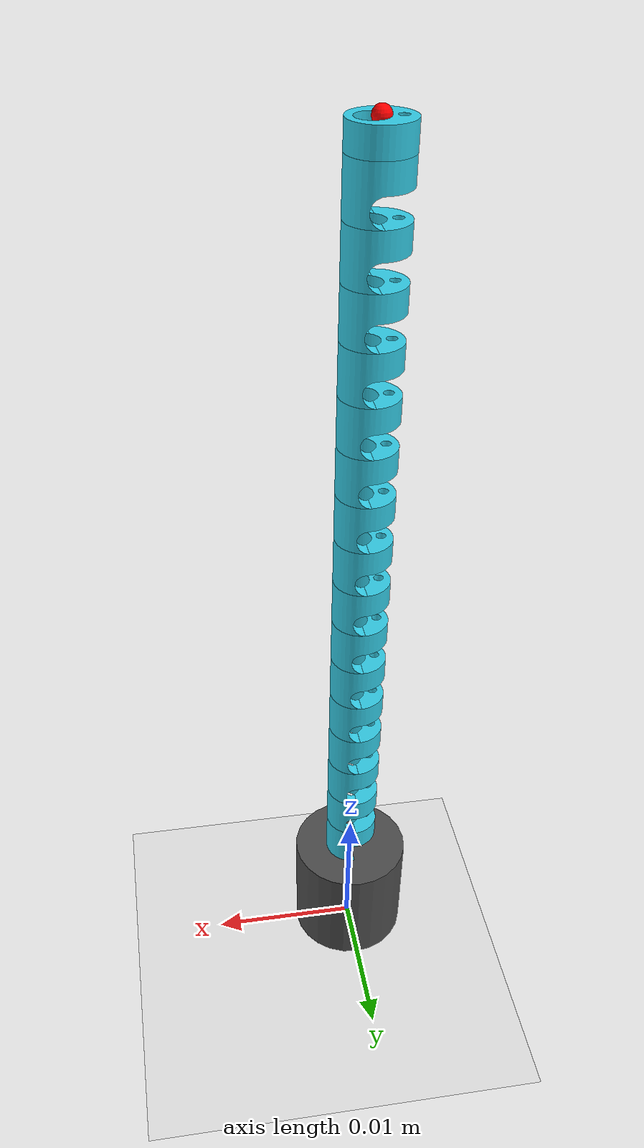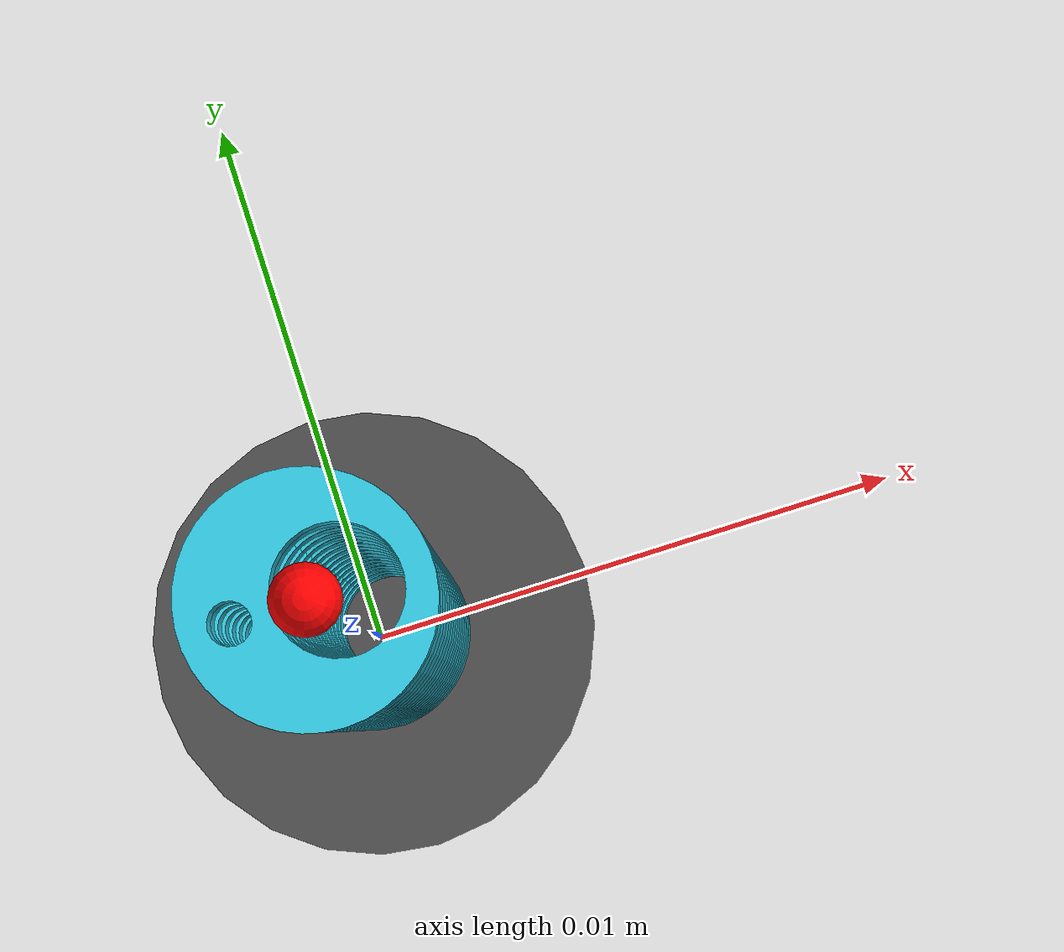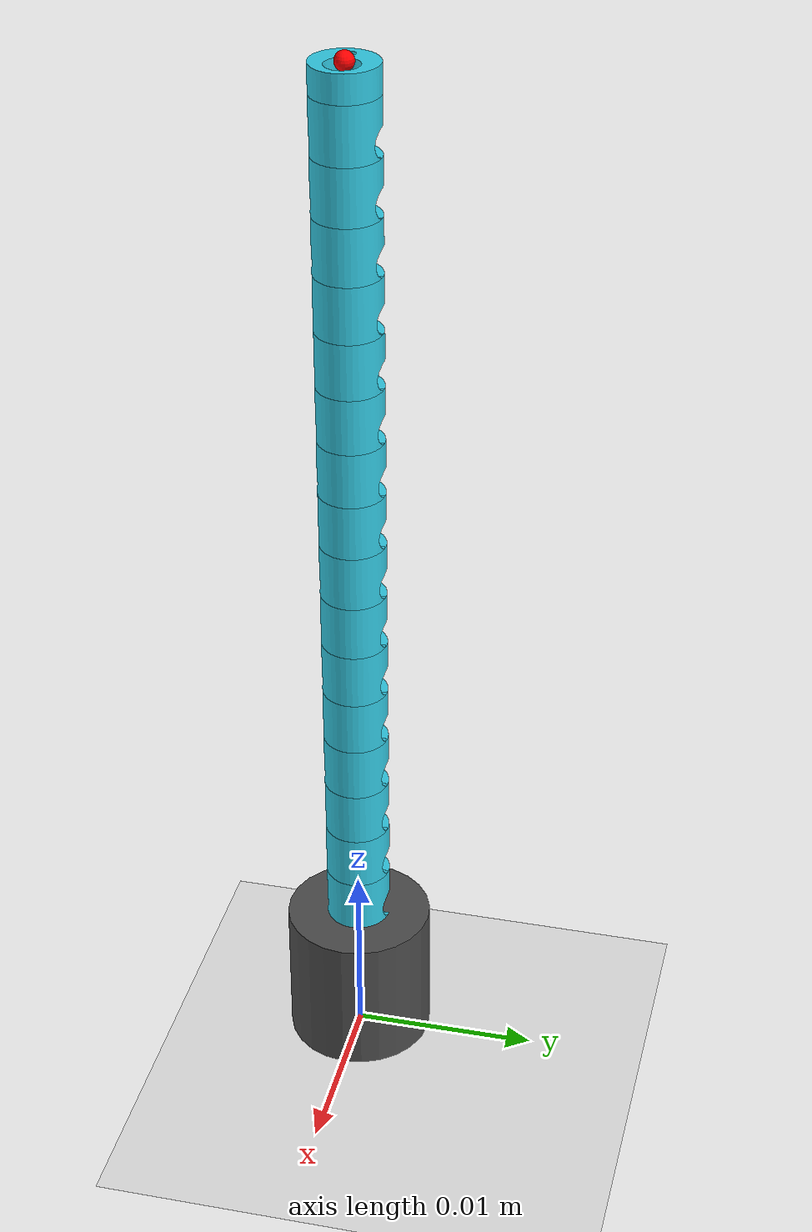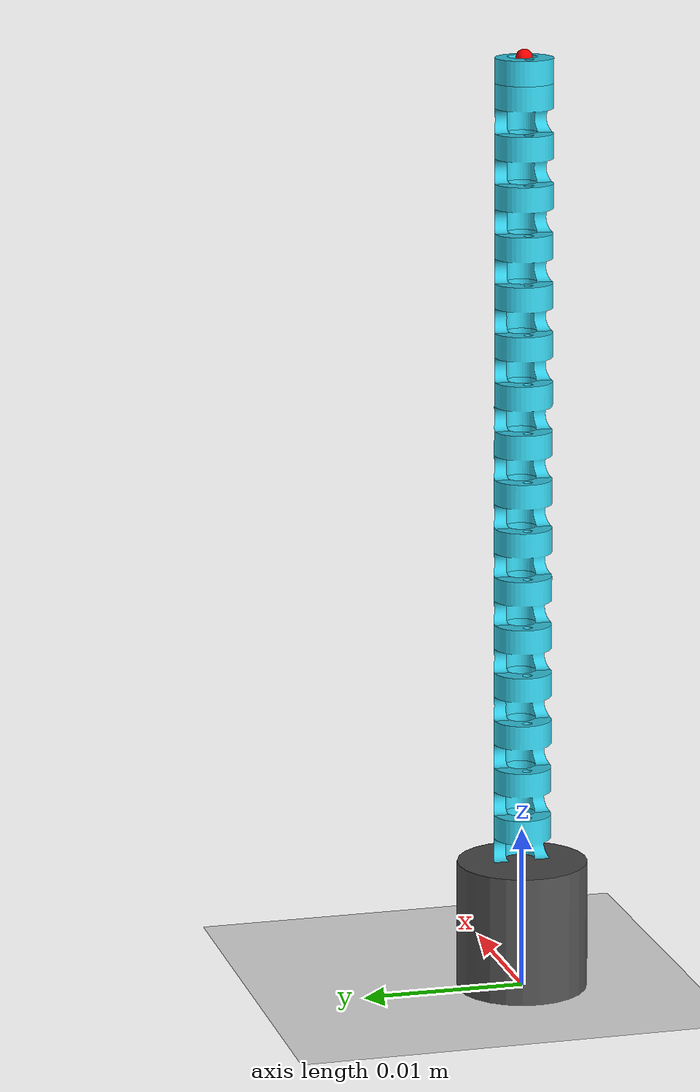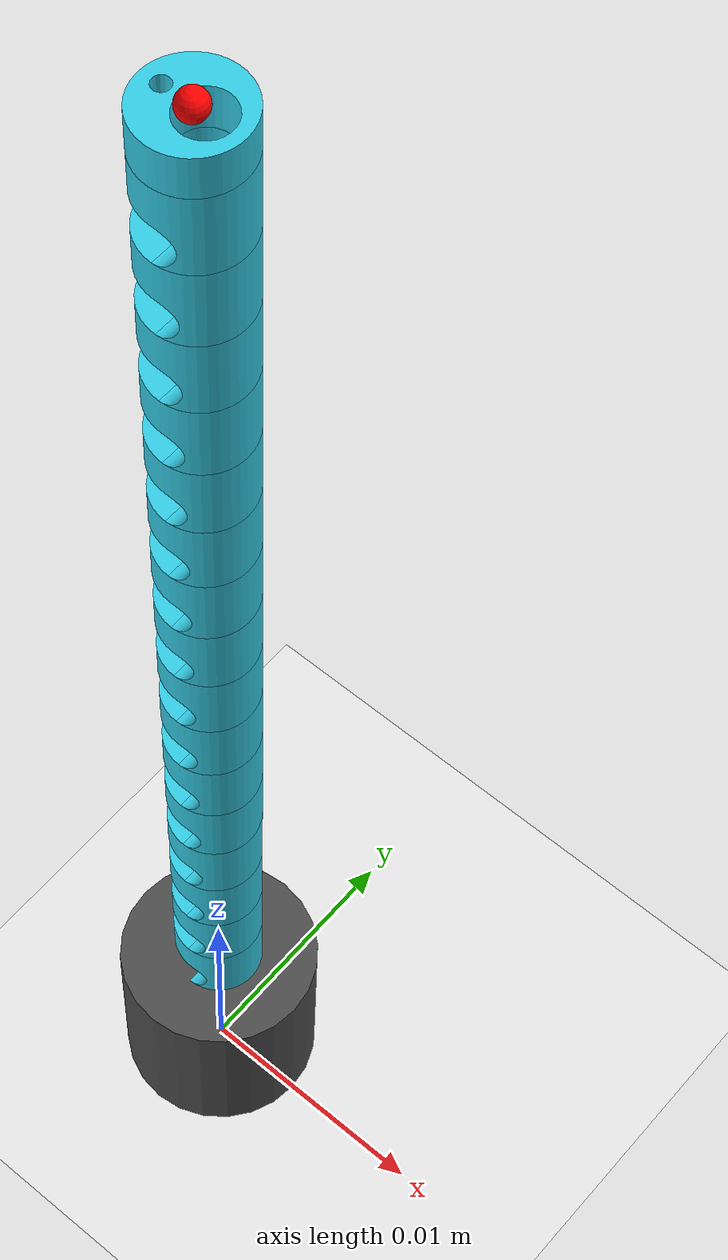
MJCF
<mujoco model="single_twist_tendon_n16">
  <compiler angle="radian" autolimits="true"/>
  <option gravity="0 0 -9.81" timestep="0.0005" integrator="implicitfast"/>
  <statistic center="0 0 0.0328" extent="0.1237"/>

  <asset>
    <mesh name="notch_mesh"  file="notch.stl"  scale="0.001 0.001 0.001"/>
    <mesh name="distal_mesh" file="distal.stl" scale="0.001 0.001 0.001"/>
    <material name="silicone" rgba="0.2 0.8 0.9 1" specular="0.5" shininess="0.5"/>
    <material name="floor" rgba="0.9 0.9 0.9 1" reflectance="0"/>
  </asset>

  <default>
    <default class="bend">
      <joint type="hinge" axis="0 1 0" stiffness="0.0137" damping="0.0002341" armature="1e-06" range="-0.1963 0.1963"/>
    </default>
    <default class="twist">
      <joint type="hinge" axis="0 0 1" stiffness="0.009135" damping="0.0001911" armature="1e-06" range="-0.2812 0.2812"/>
    </default>
    <default class="seg">
      <geom type="mesh" material="silicone" density="1100" contype="0" conaffinity="0"/>
    </default>
  </default>

  <worldbody>
    <light pos="0 0 0.3" dir="0 0 -1" directional="true"/>
    <geom type="plane" size="0.3 0.3 0.01" material="floor"/>
    <body name="base" pos="0 0 0.004">
      <geom type="cylinder" size="0.004 0.004" rgba="0.3 0.3 0.3 1"/>
      <body name="notch_1" pos="0 0 0.004">
        <joint name="bend_1" class="bend" pos="0 0 0.00075"/>
        <joint name="twist_1" class="twist"/>
        <geom class="seg" mesh="notch_mesh" pos="-0.00175 0.00175 -0.047" quat="0.70710678 0.70710678 0 0"/>
        <body name="notch_2" pos="0 0 0.003">
          <joint name="bend_2" class="bend" pos="0 0 0.00075"/>
          <joint name="twist_2" class="twist"/>
          <geom class="seg" mesh="notch_mesh" pos="-0.00175 0.00175 -0.047" quat="0.70710678 0.70710678 0 0"/>
          <body name="notch_3" pos="0 0 0.003">
            <joint name="bend_3" class="bend" pos="0 0 0.00075"/>
            <joint name="twist_3" class="twist"/>
            <geom class="seg" mesh="notch_mesh" pos="-0.00175 0.00175 -0.047" quat="0.70710678 0.70710678 0 0"/>
            <body name="notch_4" pos="0 0 0.003">
              <joint name="bend_4" class="bend" pos="0 0 0.00075"/>
              <joint name="twist_4" class="twist"/>
              <geom class="seg" mesh="notch_mesh" pos="-0.00175 0.00175 -0.047" quat="0.70710678 0.70710678 0 0"/>
              <body name="notch_5" pos="0 0 0.003">
                <joint name="bend_5" class="bend" pos="0 0 0.00075"/>
                <joint name="twist_5" class="twist"/>
                <geom class="seg" mesh="notch_mesh" pos="-0.00175 0.00175 -0.047" quat="0.70710678 0.70710678 0 0"/>
                <body name="notch_6" pos="0 0 0.003">
                  <joint name="bend_6" class="bend" pos="0 0 0.00075"/>
                  <joint name="twist_6" class="twist"/>
                  <geom class="seg" mesh="notch_mesh" pos="-0.00175 0.00175 -0.047" quat="0.70710678 0.70710678 0 0"/>
                  <body name="notch_7" pos="0 0 0.003">
                    <joint name="bend_7" class="bend" pos="0 0 0.00075"/>
                    <joint name="twist_7" class="twist"/>
                    <geom class="seg" mesh="notch_mesh" pos="-0.00175 0.00175 -0.047" quat="0.70710678 0.70710678 0 0"/>
                    <body name="notch_8" pos="0 0 0.003">
                      <joint name="bend_8" class="bend" pos="0 0 0.00075"/>
                      <joint name="twist_8" class="twist"/>
                      <geom class="seg" mesh="notch_mesh" pos="-0.00175 0.00175 -0.047" quat="0.70710678 0.70710678 0 0"/>
                      <body name="notch_9" pos="0 0 0.003">
                        <joint name="bend_9" class="bend" pos="0 0 0.00075"/>
                        <joint name="twist_9" class="twist"/>
                        <geom class="seg" mesh="notch_mesh" pos="-0.00175 0.00175 -0.047" quat="0.70710678 0.70710678 0 0"/>
                        <body name="notch_10" pos="0 0 0.003">
                          <joint name="bend_10" class="bend" pos="0 0 0.00075"/>
                          <joint name="twist_10" class="twist"/>
                          <geom class="seg" mesh="notch_mesh" pos="-0.00175 0.00175 -0.047" quat="0.70710678 0.70710678 0 0"/>
                          <body name="notch_11" pos="0 0 0.003">
                            <joint name="bend_11" class="bend" pos="0 0 0.00075"/>
                            <joint name="twist_11" class="twist"/>
                            <geom class="seg" mesh="notch_mesh" pos="-0.00175 0.00175 -0.047" quat="0.70710678 0.70710678 0 0"/>
                            <body name="notch_12" pos="0 0 0.003">
                              <joint name="bend_12" class="bend" pos="0 0 0.00075"/>
                              <joint name="twist_12" class="twist"/>
                              <geom class="seg" mesh="notch_mesh" pos="-0.00175 0.00175 -0.047" quat="0.70710678 0.70710678 0 0"/>
                              <body name="notch_13" pos="0 0 0.003">
                                <joint name="bend_13" class="bend" pos="0 0 0.00075"/>
                                <joint name="twist_13" class="twist"/>
                                <geom class="seg" mesh="notch_mesh" pos="-0.00175 0.00175 -0.047" quat="0.70710678 0.70710678 0 0"/>
                                <body name="notch_14" pos="0 0 0.003">
                                  <joint name="bend_14" class="bend" pos="0 0 0.00075"/>
                                  <joint name="twist_14" class="twist"/>
                                  <geom class="seg" mesh="notch_mesh" pos="-0.00175 0.00175 -0.047" quat="0.70710678 0.70710678 0 0"/>
                                  <body name="notch_15" pos="0 0 0.003">
                                    <joint name="bend_15" class="bend" pos="0 0 0.00075"/>
                                    <joint name="twist_15" class="twist"/>
                                    <geom class="seg" mesh="notch_mesh" pos="-0.00175 0.00175 -0.047" quat="0.70710678 0.70710678 0 0"/>
                                    <body name="notch_16" pos="0 0 0.003">
                                      <joint name="bend_16" class="bend" pos="0 0 0.00075"/>
                                      <joint name="twist_16" class="twist"/>
                                      <geom class="seg" mesh="notch_mesh" pos="-0.00175 0.00175 -0.047" quat="0.70710678 0.70710678 0 0"/>
                                      <body name="distal_tip" pos="0 0 0.003">
                                        <geom class="seg" mesh="distal_mesh" pos="-0.00175 0.00175 -0.0485" quat="0.70710678 0.70710678 0 0"/>
                                        <site name="tip" pos="0 0 0.0015" size="0.0005" rgba="1 0 0 1"/>
                                      </body>
                                    </body>
                                  </body>
                                </body>
                              </body>
                            </body>
                          </body>
                        </body>
                      </body>
                    </body>
                  </body>
                </body>
              </body>
            </body>
          </body>
        </body>
      </body>
    </body>
  </worldbody>

  <!-- 1 sợi tendon = 2 đầu vào: (kéo/đẩy) và (xoắn). Tổng góc chia đều cho các đốt -->
  <tendon>
    <fixed name="bend_total">
      <joint joint="bend_1" coef="1"/>
      <joint joint="bend_2" coef="1"/>
      <joint joint="bend_3" coef="1"/>
      <joint joint="bend_4" coef="1"/>
      <joint joint="bend_5" coef="1"/>
      <joint joint="bend_6" coef="1"/>
      <joint joint="bend_7" coef="1"/>
      <joint joint="bend_8" coef="1"/>
      <joint joint="bend_9" coef="1"/>
      <joint joint="bend_10" coef="1"/>
      <joint joint="bend_11" coef="1"/>
      <joint joint="bend_12" coef="1"/>
      <joint joint="bend_13" coef="1"/>
      <joint joint="bend_14" coef="1"/>
      <joint joint="bend_15" coef="1"/>
      <joint joint="bend_16" coef="1"/>
    </fixed>
    <fixed name="twist_total">
      <joint joint="twist_1" coef="1"/>
      <joint joint="twist_2" coef="1"/>
      <joint joint="twist_3" coef="1"/>
      <joint joint="twist_4" coef="1"/>
      <joint joint="twist_5" coef="1"/>
      <joint joint="twist_6" coef="1"/>
      <joint joint="twist_7" coef="1"/>
      <joint joint="twist_8" coef="1"/>
      <joint joint="twist_9" coef="1"/>
      <joint joint="twist_10" coef="1"/>
      <joint joint="twist_11" coef="1"/>
      <joint joint="twist_12" coef="1"/>
      <joint joint="twist_13" coef="1"/>
      <joint joint="twist_14" coef="1"/>
      <joint joint="twist_15" coef="1"/>
      <joint joint="twist_16" coef="1"/>
    </fixed>
  </tendon>

  <actuator>
    <position name="pull_push" tendon="bend_total"  kp="0.06851" ctrlrange="-3.1416 3.1416"/>
    <position name="twist"     tendon="twist_total" kp="0.04567" ctrlrange="-4.5000 4.5000"/>
  </actuator>
</mujoco>
